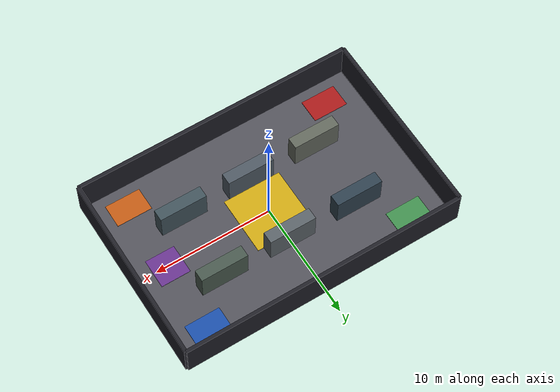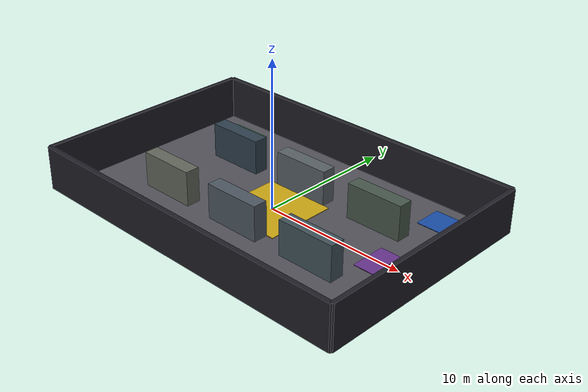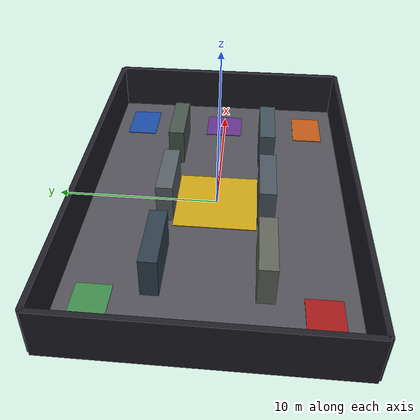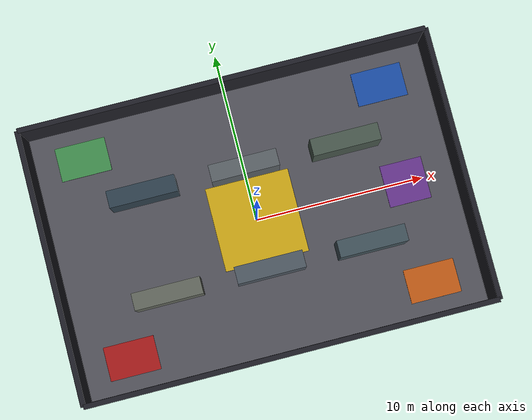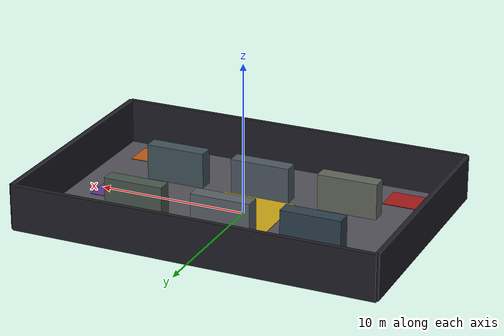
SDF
<?xml version="1.0"?>
<sdf version="1.9">

  <world name="synaids_advanced_warehouse">

    <gravity>0 0 -9.81</gravity>

    <physics name="default_physics" type="ignored">
      <max_step_size>0.001</max_step_size>
      <real_time_factor>1</real_time_factor>
      <real_time_update_rate>1000</real_time_update_rate>
    </physics>

    <plugin filename="gz-sim-physics-system"
            name="gz::sim::systems::Physics"/>

    <plugin filename="gz-sim-user-commands-system"
            name="gz::sim::systems::UserCommands"/>

    <plugin filename="gz-sim-scene-broadcaster-system"
            name="gz::sim::systems::SceneBroadcaster"/>

    <!-- FLOOR -->

    <model name="warehouse_floor">
      <static>true</static>
      <pose>0 0 -0.05 0 0 0</pose>

      <link name="link">

        <collision name="collision">
          <geometry>
            <box>
              <size>24 16 0.1</size>
            </box>
          </geometry>
        </collision>

        <visual name="visual">
          <geometry>
            <box>
              <size>24 16 0.1</size>
            </box>
          </geometry>

          <material>
            <ambient>0.20 0.20 0.22 1</ambient>
            <diffuse>0.32 0.32 0.35 1</diffuse>
            <specular>0.15 0.15 0.15 1</specular>
          </material>
        </visual>

      </link>
    </model>

    <!-- PERIMETER WALLS -->

    <model name="wall_north">
      <static>true</static>
      <pose>0 8 1.5 0 0 0</pose>
      <link name="link">
        <collision name="collision">
          <geometry>
            <box><size>24 0.3 3</size></box>
          </geometry>
        </collision>
        <visual name="visual">
          <geometry>
            <box><size>24 0.3 3</size></box>
          </geometry>
          <material>
            <ambient>0.08 0.08 0.10 1</ambient>
            <diffuse>0.12 0.12 0.15 1</diffuse>
          </material>
        </visual>
      </link>
    </model>

    <model name="wall_south">
      <static>true</static>
      <pose>0 -8 1.5 0 0 0</pose>
      <link name="link">
        <collision name="collision">
          <geometry>
            <box><size>24 0.3 3</size></box>
          </geometry>
        </collision>
        <visual name="visual">
          <geometry>
            <box><size>24 0.3 3</size></box>
          </geometry>
          <material>
            <ambient>0.08 0.08 0.10 1</ambient>
            <diffuse>0.12 0.12 0.15 1</diffuse>
          </material>
        </visual>
      </link>
    </model>

    <model name="wall_east">
      <static>true</static>
      <pose>12 0 1.5 0 0 0</pose>
      <link name="link">
        <collision name="collision">
          <geometry>
            <box><size>0.3 16 3</size></box>
          </geometry>
        </collision>
        <visual name="visual">
          <geometry>
            <box><size>0.3 16 3</size></box>
          </geometry>
          <material>
            <ambient>0.08 0.08 0.10 1</ambient>
            <diffuse>0.12 0.12 0.15 1</diffuse>
          </material>
        </visual>
      </link>
    </model>

    <model name="wall_west">
      <static>true</static>
      <pose>-12 0 1.5 0 0 0</pose>
      <link name="link">
        <collision name="collision">
          <geometry>
            <box><size>0.3 16 3</size></box>
          </geometry>
        </collision>
        <visual name="visual">
          <geometry>
            <box><size>0.3 16 3</size></box>
          </geometry>
          <material>
            <ambient>0.08 0.08 0.10 1</ambient>
            <diffuse>0.12 0.12 0.15 1</diffuse>
          </material>
        </visual>
      </link>
    </model>

    <!-- SHELF BLOCK 1 -->

    <model name="shelf_1">
      <static>true</static>
      <pose>-6 3 1.2 0 0 0</pose>
      <link name="link">

        <collision name="collision">
          <geometry>
            <box><size>4 1.0 2.4</size></box>
          </geometry>
        </collision>

        <visual name="visual">
          <geometry>
            <box><size>4 1.0 2.4</size></box>
          </geometry>
          <material>
            <ambient>0.08 0.12 0.16 1</ambient>
            <diffuse>0.18 0.25 0.30 1</diffuse>
          </material>
        </visual>

      </link>
    </model>

    <!-- SHELF BLOCK 2 -->

    <model name="shelf_2">
      <static>true</static>
      <pose>0 3 1.2 0 0 0</pose>
      <link name="link">

        <collision name="collision">
          <geometry>
            <box><size>4 1.0 2.4</size></box>
          </geometry>
        </collision>

        <visual name="visual">
          <geometry>
            <box><size>4 1.0 2.4</size></box>
          </geometry>
          <material>
            <ambient>0.18 0.18 0.18 1</ambient>
            <diffuse>0.35 0.38 0.40 1</diffuse>
          </material>
        </visual>

      </link>
    </model>

    <!-- SHELF BLOCK 3 -->

    <model name="shelf_3">
      <static>true</static>
      <pose>6 3 1.2 0 0 0</pose>
      <link name="link">

        <collision name="collision">
          <geometry>
            <box><size>4 1.0 2.4</size></box>
          </geometry>
        </collision>

        <visual name="visual">
          <geometry>
            <box><size>4 1.0 2.4</size></box>
          </geometry>
          <material>
            <ambient>0.12 0.16 0.14 1</ambient>
            <diffuse>0.28 0.34 0.30 1</diffuse>
          </material>
        </visual>

      </link>
    </model>

    <!-- SHELF BLOCK 4 -->

    <model name="shelf_4">
      <static>true</static>
      <pose>-6 -3 1.2 0 0 0</pose>
      <link name="link">

        <collision name="collision">
          <geometry>
            <box><size>4 1.0 2.4</size></box>
          </geometry>
        </collision>

        <visual name="visual">
          <geometry>
            <box><size>4 1.0 2.4</size></box>
          </geometry>
          <material>
            <ambient>0.20 0.20 0.18 1</ambient>
            <diffuse>0.38 0.40 0.36 1</diffuse>
          </material>
        </visual>

      </link>
    </model>

    <!-- SHELF BLOCK 5 -->

    <model name="shelf_5">
      <static>true</static>
      <pose>0 -3 1.2 0 0 0</pose>
      <link name="link">

        <collision name="collision">
          <geometry>
            <box><size>4 1.0 2.4</size></box>
          </geometry>
        </collision>

        <visual name="visual">
          <geometry>
            <box><size>4 1.0 2.4</size></box>
          </geometry>
          <material>
            <ambient>0.16 0.18 0.20 1</ambient>
            <diffuse>0.30 0.34 0.38 1</diffuse>
          </material>
        </visual>

      </link>
    </model>

    <!-- SHELF BLOCK 6 -->

    <model name="shelf_6">
      <static>true</static>
      <pose>6 -3 1.2 0 0 0</pose>
      <link name="link">

        <collision name="collision">
          <geometry>
            <box><size>4 1.0 2.4</size></box>
          </geometry>
        </collision>

        <visual name="visual">
          <geometry>
            <box><size>4 1.0 2.4</size></box>
          </geometry>
          <material>
            <ambient>0.12 0.18 0.20 1</ambient>
            <diffuse>0.25 0.32 0.35 1</diffuse>
          </material>
        </visual>

      </link>
    </model>

    <!-- PICKUP ZONE - GREEN -->

    <model name="pickup_zone">
      <static>true</static>
      <pose>-9 6 0.02 0 0 0</pose>
      <link name="link">
        <visual name="visual">
          <geometry>
            <box><size>3 2 0.04</size></box>
          </geometry>
          <material>
            <ambient>0.08 0.25 0.10 1</ambient>
            <diffuse>0.25 0.55 0.30 1</diffuse>
          </material>
        </visual>
      </link>
    </model>

    <!-- DELIVERY ZONE - ORANGE -->

    <model name="delivery_zone">
      <static>true</static>
      <pose>9 -6 0.02 0 0 0</pose>
      <link name="link">
        <visual name="visual">
          <geometry>
            <box><size>3 2 0.04</size></box>
          </geometry>
          <material>
            <ambient>0.35 0.16 0.03 1</ambient>
            <diffuse>0.75 0.35 0.08 1</diffuse>
          </material>
        </visual>
      </link>
    </model>

    <!-- CHARGING STATION - BLUE -->

    <model name="charging_station">
      <static>true</static>
      <pose>9 6 0.02 0 0 0</pose>
      <link name="link">
        <visual name="visual">
          <geometry>
            <box><size>3 2 0.04</size></box>
          </geometry>
          <material>
            <ambient>0.05 0.15 0.35 1</ambient>
            <diffuse>0.10 0.30 0.65 1</diffuse>
          </material>
        </visual>
      </link>
    </model>

    <!-- RESTRICTED ZONE - RED -->

    <model name="restricted_zone">
      <static>true</static>
      <pose>-9 -6 0.02 0 0 0</pose>
      <link name="link">
        <visual name="visual">
          <geometry>
            <box><size>3 2 0.04</size></box>
          </geometry>
          <material>
            <ambient>0.35 0.04 0.04 1</ambient>
            <diffuse>0.65 0.10 0.10 1</diffuse>
          </material>
        </visual>
      </link>
    </model>

    <!-- CENTRAL SAFETY CROSSING -->

    <model name="central_intersection">
      <static>true</static>
      <pose>0 0 0.025 0 0 0</pose>
      <link name="link">
        <visual name="visual">
          <geometry>
            <box><size>5 5 0.05</size></box>
          </geometry>
          <material>
            <ambient>0.45 0.38 0.03 1</ambient>
            <diffuse>0.80 0.65 0.08 1</diffuse>
          </material>
        </visual>
      </link>
    </model>

    <!-- MAINTENANCE AREA - PURPLE -->

    <model name="maintenance_area">
      <static>true</static>
      <pose>9 0 0.02 0 0 0</pose>
      <link name="link">
        <visual name="visual">
          <geometry>
            <box><size>2.5 2.5 0.04</size></box>
          </geometry>
          <material>
            <ambient>0.18 0.08 0.25 1</ambient>
            <diffuse>0.40 0.20 0.55 1</diffuse>
          </material>
        </visual>
      </link>
    </model>

    <!-- LIGHTING -->

    <light name="warehouse_light_1" type="directional">
      <pose>0 0 10 0 0 0</pose>
      <diffuse>1 1 1 1</diffuse>
      <specular>0.3 0.3 0.3 1</specular>
      <direction>-0.3 0.2 -1</direction>
    </light>

    <light name="warehouse_light_2" type="point">
      <pose>-6 0 6 0 0 0</pose>
      <diffuse>0.8 0.9 1.0 1</diffuse>
      <specular>0.2 0.2 0.2 1</specular>
      <attenuation>
        <range>15</range>
        <constant>0.5</constant>
        <linear>0.01</linear>
        <quadratic>0.001</quadratic>
      </attenuation>
    </light>

    <light name="warehouse_light_3" type="point">
      <pose>6 0 6 0 0 0</pose>
      <diffuse>1.0 0.8 0.6 1</diffuse>
      <specular>0.2 0.2 0.2 1</specular>
      <attenuation>
        <range>15</range>
        <constant>0.5</constant>
        <linear>0.01</linear>
        <quadratic>0.001</quadratic>
      </attenuation>
    </light>

  </world>
</sdf>
